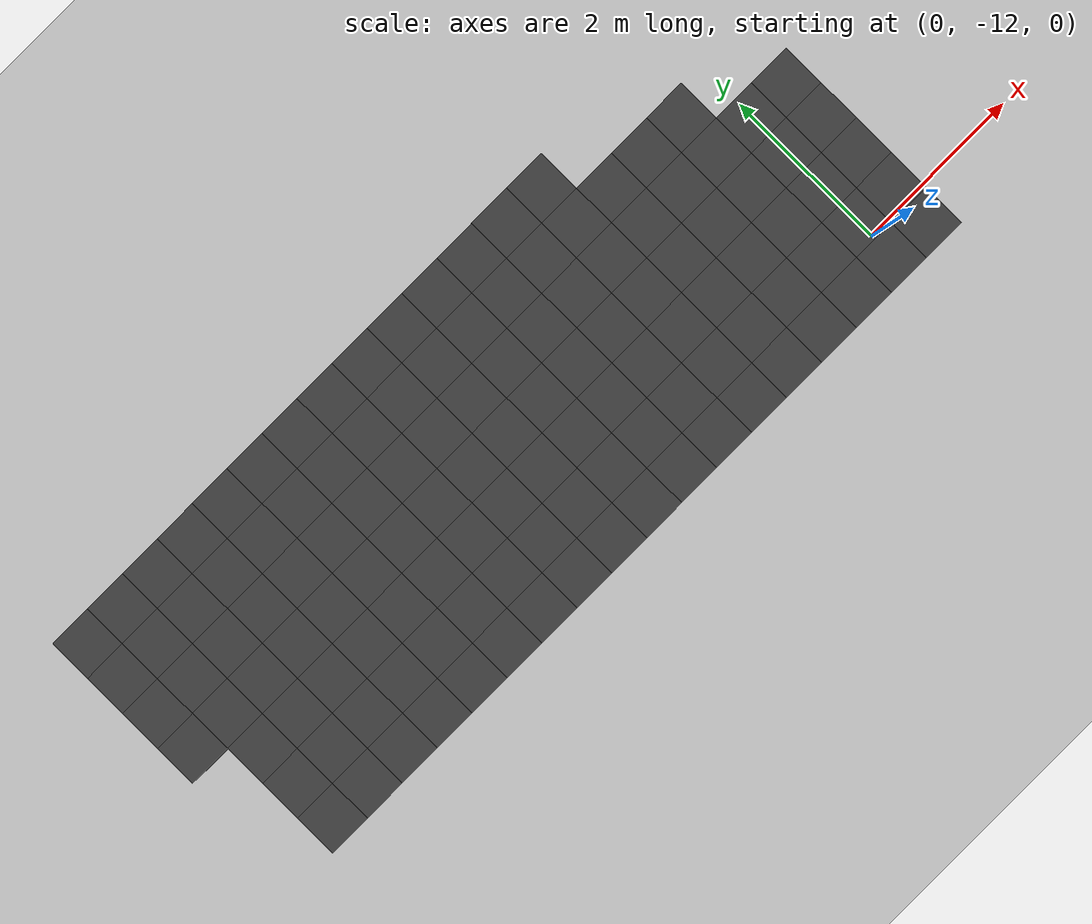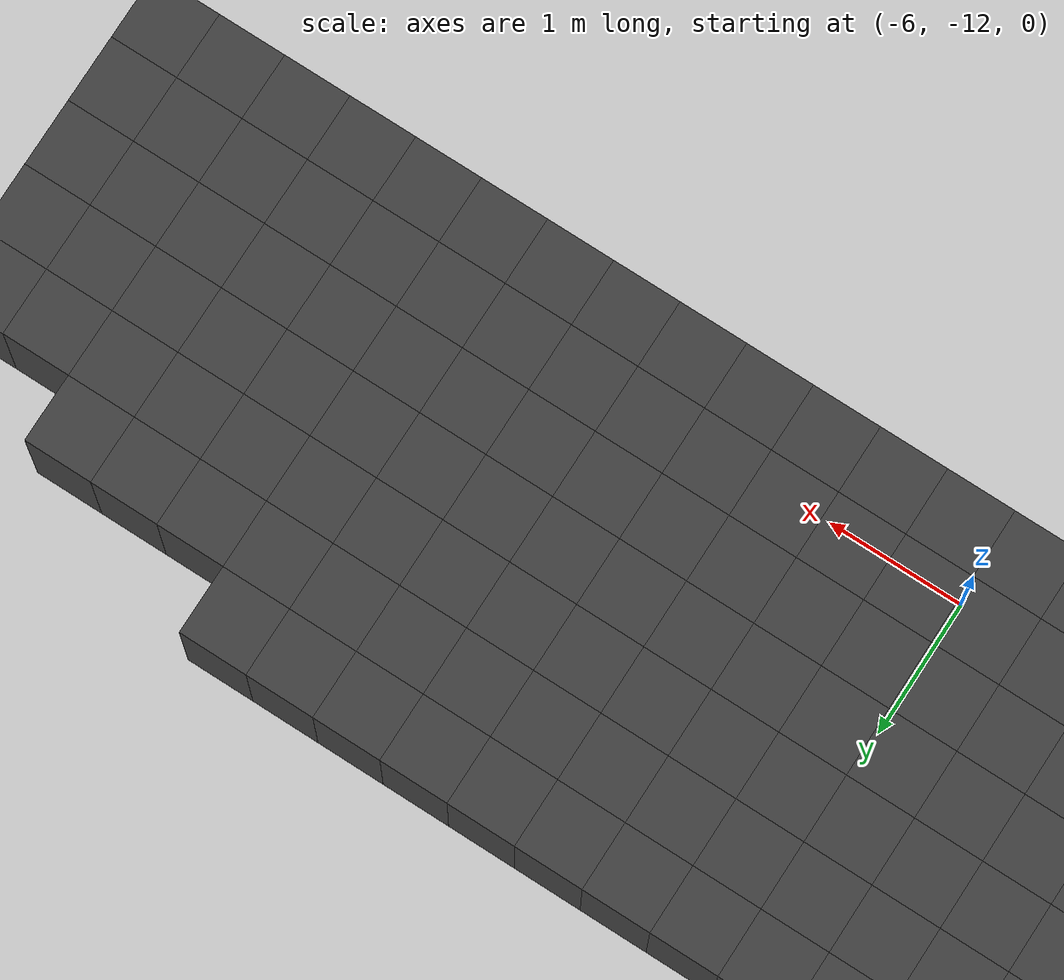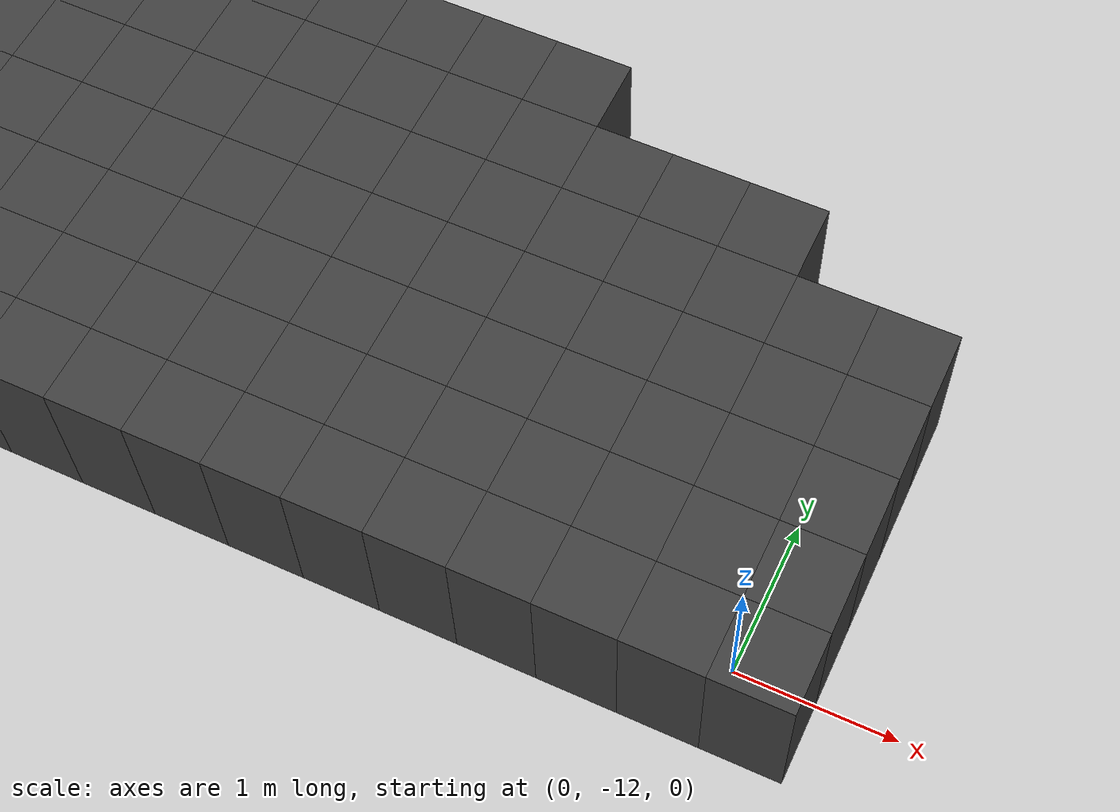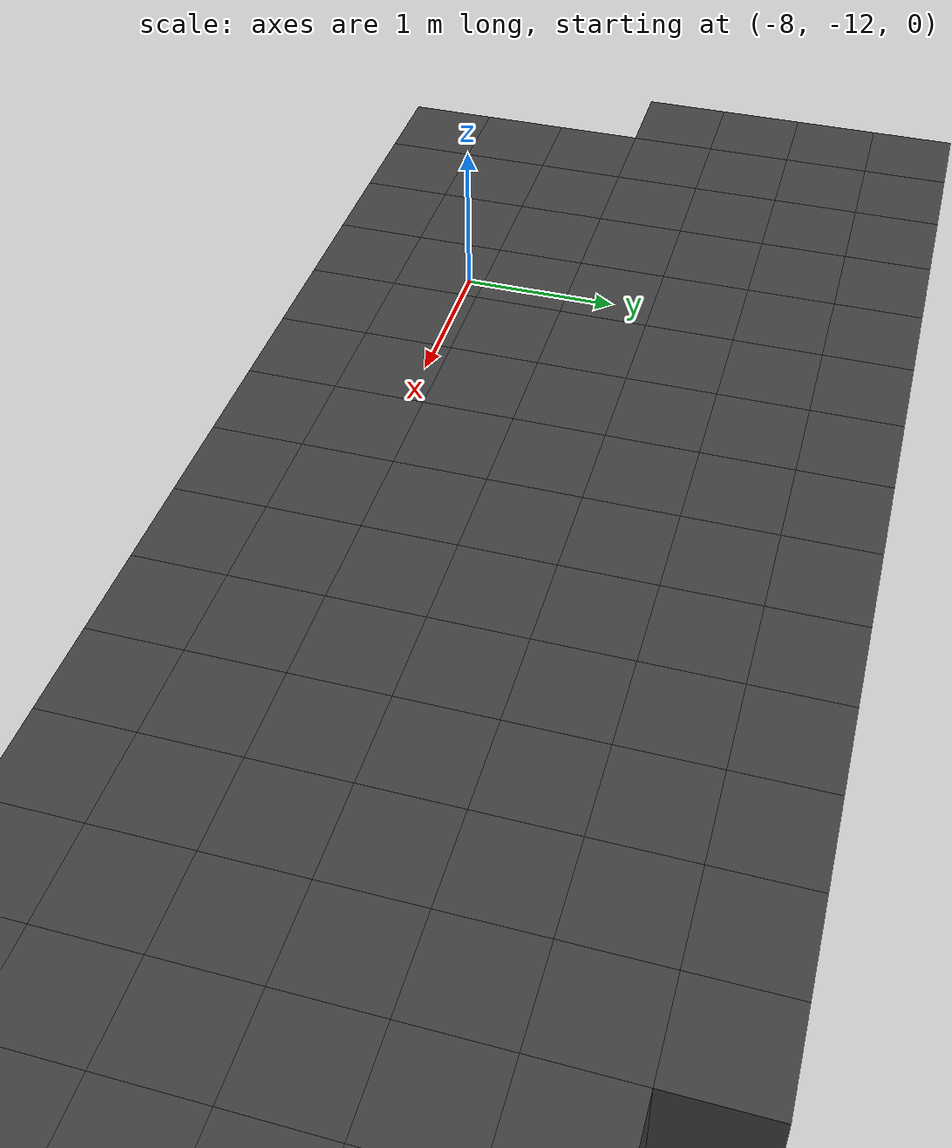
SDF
<sdf version="1.7">
 <world name="map_14802">
  <model name="ground_plane">
   <static>true</static>
   <link name="link">
    <collision name="collision">
     <geometry><plane><normal>0 0 1</normal><size>200 200</size></plane></geometry>
    </collision>
    <visual name="visual">
     <geometry><plane><normal>0 0 1</normal><size>200 200</size></plane></geometry>
     <material><ambient>0.8 0.8 0.8 1</ambient><diffuse>0.8 0.8 0.8 1</diffuse></material>
    </visual>
   </link>
  </model>
  <model name="maze_environment">
   <static>true</static>
   <link name="wall_1435">
    <pose>-8.750 -9.250 0.500 0 0 0</pose>
    <collision name="col"><geometry><box><size>0.5 0.5 1.0</size></box></geometry></collision>
    <visual name="vis">
     <geometry><box><size>0.5 0.5 1.0</size></box></geometry>
     <material><ambient>0.15 0.15 0.15 1</ambient><diffuse>0.25 0.25 0.25 1</diffuse></material>
    </visual>
   </link>
   <link name="wall_1436">
    <pose>-8.250 -9.250 0.500 0 0 0</pose>
    <collision name="col"><geometry><box><size>0.5 0.5 1.0</size></box></geometry></collision>
    <visual name="vis">
     <geometry><box><size>0.5 0.5 1.0</size></box></geometry>
     <material><ambient>0.15 0.15 0.15 1</ambient><diffuse>0.25 0.25 0.25 1</diffuse></material>
    </visual>
   </link>
   <link name="wall_1437">
    <pose>-7.750 -9.250 0.500 0 0 0</pose>
    <collision name="col"><geometry><box><size>0.5 0.5 1.0</size></box></geometry></collision>
    <visual name="vis">
     <geometry><box><size>0.5 0.5 1.0</size></box></geometry>
     <material><ambient>0.15 0.15 0.15 1</ambient><diffuse>0.25 0.25 0.25 1</diffuse></material>
    </visual>
   </link>
   <link name="wall_1438">
    <pose>-7.250 -9.250 0.500 0 0 0</pose>
    <collision name="col"><geometry><box><size>0.5 0.5 1.0</size></box></geometry></collision>
    <visual name="vis">
     <geometry><box><size>0.5 0.5 1.0</size></box></geometry>
     <material><ambient>0.15 0.15 0.15 1</ambient><diffuse>0.25 0.25 0.25 1</diffuse></material>
    </visual>
   </link>
   <link name="wall_1439">
    <pose>-6.750 -9.250 0.500 0 0 0</pose>
    <collision name="col"><geometry><box><size>0.5 0.5 1.0</size></box></geometry></collision>
    <visual name="vis">
     <geometry><box><size>0.5 0.5 1.0</size></box></geometry>
     <material><ambient>0.15 0.15 0.15 1</ambient><diffuse>0.25 0.25 0.25 1</diffuse></material>
    </visual>
   </link>
   <link name="wall_1440">
    <pose>-6.250 -9.250 0.500 0 0 0</pose>
    <collision name="col"><geometry><box><size>0.5 0.5 1.0</size></box></geometry></collision>
    <visual name="vis">
     <geometry><box><size>0.5 0.5 1.0</size></box></geometry>
     <material><ambient>0.15 0.15 0.15 1</ambient><diffuse>0.25 0.25 0.25 1</diffuse></material>
    </visual>
   </link>
   <link name="wall_1441">
    <pose>-5.750 -9.250 0.500 0 0 0</pose>
    <collision name="col"><geometry><box><size>0.5 0.5 1.0</size></box></geometry></collision>
    <visual name="vis">
     <geometry><box><size>0.5 0.5 1.0</size></box></geometry>
     <material><ambient>0.15 0.15 0.15 1</ambient><diffuse>0.25 0.25 0.25 1</diffuse></material>
    </visual>
   </link>
   <link name="wall_1442">
    <pose>-5.250 -9.250 0.500 0 0 0</pose>
    <collision name="col"><geometry><box><size>0.5 0.5 1.0</size></box></geometry></collision>
    <visual name="vis">
     <geometry><box><size>0.5 0.5 1.0</size></box></geometry>
     <material><ambient>0.15 0.15 0.15 1</ambient><diffuse>0.25 0.25 0.25 1</diffuse></material>
    </visual>
   </link>
   <link name="wall_1443">
    <pose>-4.750 -9.250 0.500 0 0 0</pose>
    <collision name="col"><geometry><box><size>0.5 0.5 1.0</size></box></geometry></collision>
    <visual name="vis">
     <geometry><box><size>0.5 0.5 1.0</size></box></geometry>
     <material><ambient>0.15 0.15 0.15 1</ambient><diffuse>0.25 0.25 0.25 1</diffuse></material>
    </visual>
   </link>
   <link name="wall_1444">
    <pose>-4.250 -9.250 0.500 0 0 0</pose>
    <collision name="col"><geometry><box><size>0.5 0.5 1.0</size></box></geometry></collision>
    <visual name="vis">
     <geometry><box><size>0.5 0.5 1.0</size></box></geometry>
     <material><ambient>0.15 0.15 0.15 1</ambient><diffuse>0.25 0.25 0.25 1</diffuse></material>
    </visual>
   </link>
   <link name="wall_1445">
    <pose>-3.750 -9.250 0.500 0 0 0</pose>
    <collision name="col"><geometry><box><size>0.5 0.5 1.0</size></box></geometry></collision>
    <visual name="vis">
     <geometry><box><size>0.5 0.5 1.0</size></box></geometry>
     <material><ambient>0.15 0.15 0.15 1</ambient><diffuse>0.25 0.25 0.25 1</diffuse></material>
    </visual>
   </link>
   <link name="wall_1446">
    <pose>-3.250 -9.250 0.500 0 0 0</pose>
    <collision name="col"><geometry><box><size>0.5 0.5 1.0</size></box></geometry></collision>
    <visual name="vis">
     <geometry><box><size>0.5 0.5 1.0</size></box></geometry>
     <material><ambient>0.15 0.15 0.15 1</ambient><diffuse>0.25 0.25 0.25 1</diffuse></material>
    </visual>
   </link>
   <link name="wall_1447">
    <pose>-2.750 -9.250 0.500 0 0 0</pose>
    <collision name="col"><geometry><box><size>0.5 0.5 1.0</size></box></geometry></collision>
    <visual name="vis">
     <geometry><box><size>0.5 0.5 1.0</size></box></geometry>
     <material><ambient>0.15 0.15 0.15 1</ambient><diffuse>0.25 0.25 0.25 1</diffuse></material>
    </visual>
   </link>
   <link name="wall_1448">
    <pose>-2.250 -9.250 0.500 0 0 0</pose>
    <collision name="col"><geometry><box><size>0.5 0.5 1.0</size></box></geometry></collision>
    <visual name="vis">
     <geometry><box><size>0.5 0.5 1.0</size></box></geometry>
     <material><ambient>0.15 0.15 0.15 1</ambient><diffuse>0.25 0.25 0.25 1</diffuse></material>
    </visual>
   </link>
   <link name="wall_1477">
    <pose>-8.750 -9.750 0.500 0 0 0</pose>
    <collision name="col"><geometry><box><size>0.5 0.5 1.0</size></box></geometry></collision>
    <visual name="vis">
     <geometry><box><size>0.5 0.5 1.0</size></box></geometry>
     <material><ambient>0.15 0.15 0.15 1</ambient><diffuse>0.25 0.25 0.25 1</diffuse></material>
    </visual>
   </link>
   <link name="wall_1478">
    <pose>-8.250 -9.750 0.500 0 0 0</pose>
    <collision name="col"><geometry><box><size>0.5 0.5 1.0</size></box></geometry></collision>
    <visual name="vis">
     <geometry><box><size>0.5 0.5 1.0</size></box></geometry>
     <material><ambient>0.15 0.15 0.15 1</ambient><diffuse>0.25 0.25 0.25 1</diffuse></material>
    </visual>
   </link>
   <link name="wall_1479">
    <pose>-7.750 -9.750 0.500 0 0 0</pose>
    <collision name="col"><geometry><box><size>0.5 0.5 1.0</size></box></geometry></collision>
    <visual name="vis">
     <geometry><box><size>0.5 0.5 1.0</size></box></geometry>
     <material><ambient>0.15 0.15 0.15 1</ambient><diffuse>0.25 0.25 0.25 1</diffuse></material>
    </visual>
   </link>
   <link name="wall_1480">
    <pose>-7.250 -9.750 0.500 0 0 0</pose>
    <collision name="col"><geometry><box><size>0.5 0.5 1.0</size></box></geometry></collision>
    <visual name="vis">
     <geometry><box><size>0.5 0.5 1.0</size></box></geometry>
     <material><ambient>0.15 0.15 0.15 1</ambient><diffuse>0.25 0.25 0.25 1</diffuse></material>
    </visual>
   </link>
   <link name="wall_1481">
    <pose>-6.750 -9.750 0.500 0 0 0</pose>
    <collision name="col"><geometry><box><size>0.5 0.5 1.0</size></box></geometry></collision>
    <visual name="vis">
     <geometry><box><size>0.5 0.5 1.0</size></box></geometry>
     <material><ambient>0.15 0.15 0.15 1</ambient><diffuse>0.25 0.25 0.25 1</diffuse></material>
    </visual>
   </link>
   <link name="wall_1482">
    <pose>-6.250 -9.750 0.500 0 0 0</pose>
    <collision name="col"><geometry><box><size>0.5 0.5 1.0</size></box></geometry></collision>
    <visual name="vis">
     <geometry><box><size>0.5 0.5 1.0</size></box></geometry>
     <material><ambient>0.15 0.15 0.15 1</ambient><diffuse>0.25 0.25 0.25 1</diffuse></material>
    </visual>
   </link>
   <link name="wall_1483">
    <pose>-5.750 -9.750 0.500 0 0 0</pose>
    <collision name="col"><geometry><box><size>0.5 0.5 1.0</size></box></geometry></collision>
    <visual name="vis">
     <geometry><box><size>0.5 0.5 1.0</size></box></geometry>
     <material><ambient>0.15 0.15 0.15 1</ambient><diffuse>0.25 0.25 0.25 1</diffuse></material>
    </visual>
   </link>
   <link name="wall_1484">
    <pose>-5.250 -9.750 0.500 0 0 0</pose>
    <collision name="col"><geometry><box><size>0.5 0.5 1.0</size></box></geometry></collision>
    <visual name="vis">
     <geometry><box><size>0.5 0.5 1.0</size></box></geometry>
     <material><ambient>0.15 0.15 0.15 1</ambient><diffuse>0.25 0.25 0.25 1</diffuse></material>
    </visual>
   </link>
   <link name="wall_1485">
    <pose>-4.750 -9.750 0.500 0 0 0</pose>
    <collision name="col"><geometry><box><size>0.5 0.5 1.0</size></box></geometry></collision>
    <visual name="vis">
     <geometry><box><size>0.5 0.5 1.0</size></box></geometry>
     <material><ambient>0.15 0.15 0.15 1</ambient><diffuse>0.25 0.25 0.25 1</diffuse></material>
    </visual>
   </link>
   <link name="wall_1486">
    <pose>-4.250 -9.750 0.500 0 0 0</pose>
    <collision name="col"><geometry><box><size>0.5 0.5 1.0</size></box></geometry></collision>
    <visual name="vis">
     <geometry><box><size>0.5 0.5 1.0</size></box></geometry>
     <material><ambient>0.15 0.15 0.15 1</ambient><diffuse>0.25 0.25 0.25 1</diffuse></material>
    </visual>
   </link>
   <link name="wall_1487">
    <pose>-3.750 -9.750 0.500 0 0 0</pose>
    <collision name="col"><geometry><box><size>0.5 0.5 1.0</size></box></geometry></collision>
    <visual name="vis">
     <geometry><box><size>0.5 0.5 1.0</size></box></geometry>
     <material><ambient>0.15 0.15 0.15 1</ambient><diffuse>0.25 0.25 0.25 1</diffuse></material>
    </visual>
   </link>
   <link name="wall_1488">
    <pose>-3.250 -9.750 0.500 0 0 0</pose>
    <collision name="col"><geometry><box><size>0.5 0.5 1.0</size></box></geometry></collision>
    <visual name="vis">
     <geometry><box><size>0.5 0.5 1.0</size></box></geometry>
     <material><ambient>0.15 0.15 0.15 1</ambient><diffuse>0.25 0.25 0.25 1</diffuse></material>
    </visual>
   </link>
   <link name="wall_1489">
    <pose>-2.750 -9.750 0.500 0 0 0</pose>
    <collision name="col"><geometry><box><size>0.5 0.5 1.0</size></box></geometry></collision>
    <visual name="vis">
     <geometry><box><size>0.5 0.5 1.0</size></box></geometry>
     <material><ambient>0.15 0.15 0.15 1</ambient><diffuse>0.25 0.25 0.25 1</diffuse></material>
    </visual>
   </link>
   <link name="wall_1490">
    <pose>-2.250 -9.750 0.500 0 0 0</pose>
    <collision name="col"><geometry><box><size>0.5 0.5 1.0</size></box></geometry></collision>
    <visual name="vis">
     <geometry><box><size>0.5 0.5 1.0</size></box></geometry>
     <material><ambient>0.15 0.15 0.15 1</ambient><diffuse>0.25 0.25 0.25 1</diffuse></material>
    </visual>
   </link>
   <link name="wall_1491">
    <pose>-1.750 -9.750 0.500 0 0 0</pose>
    <collision name="col"><geometry><box><size>0.5 0.5 1.0</size></box></geometry></collision>
    <visual name="vis">
     <geometry><box><size>0.5 0.5 1.0</size></box></geometry>
     <material><ambient>0.15 0.15 0.15 1</ambient><diffuse>0.25 0.25 0.25 1</diffuse></material>
    </visual>
   </link>
   <link name="wall_1492">
    <pose>-1.250 -9.750 0.500 0 0 0</pose>
    <collision name="col"><geometry><box><size>0.5 0.5 1.0</size></box></geometry></collision>
    <visual name="vis">
     <geometry><box><size>0.5 0.5 1.0</size></box></geometry>
     <material><ambient>0.15 0.15 0.15 1</ambient><diffuse>0.25 0.25 0.25 1</diffuse></material>
    </visual>
   </link>
   <link name="wall_1493">
    <pose>-0.750 -9.750 0.500 0 0 0</pose>
    <collision name="col"><geometry><box><size>0.5 0.5 1.0</size></box></geometry></collision>
    <visual name="vis">
     <geometry><box><size>0.5 0.5 1.0</size></box></geometry>
     <material><ambient>0.15 0.15 0.15 1</ambient><diffuse>0.25 0.25 0.25 1</diffuse></material>
    </visual>
   </link>
   <link name="wall_1517">
    <pose>-8.750 -10.250 0.500 0 0 0</pose>
    <collision name="col"><geometry><box><size>0.5 0.5 1.0</size></box></geometry></collision>
    <visual name="vis">
     <geometry><box><size>0.5 0.5 1.0</size></box></geometry>
     <material><ambient>0.15 0.15 0.15 1</ambient><diffuse>0.25 0.25 0.25 1</diffuse></material>
    </visual>
   </link>
   <link name="wall_1518">
    <pose>-8.250 -10.250 0.500 0 0 0</pose>
    <collision name="col"><geometry><box><size>0.5 0.5 1.0</size></box></geometry></collision>
    <visual name="vis">
     <geometry><box><size>0.5 0.5 1.0</size></box></geometry>
     <material><ambient>0.15 0.15 0.15 1</ambient><diffuse>0.25 0.25 0.25 1</diffuse></material>
    </visual>
   </link>
   <link name="wall_1519">
    <pose>-7.750 -10.250 0.500 0 0 0</pose>
    <collision name="col"><geometry><box><size>0.5 0.5 1.0</size></box></geometry></collision>
    <visual name="vis">
     <geometry><box><size>0.5 0.5 1.0</size></box></geometry>
     <material><ambient>0.15 0.15 0.15 1</ambient><diffuse>0.25 0.25 0.25 1</diffuse></material>
    </visual>
   </link>
   <link name="wall_1520">
    <pose>-7.250 -10.250 0.500 0 0 0</pose>
    <collision name="col"><geometry><box><size>0.5 0.5 1.0</size></box></geometry></collision>
    <visual name="vis">
     <geometry><box><size>0.5 0.5 1.0</size></box></geometry>
     <material><ambient>0.15 0.15 0.15 1</ambient><diffuse>0.25 0.25 0.25 1</diffuse></material>
    </visual>
   </link>
   <link name="wall_1521">
    <pose>-6.750 -10.250 0.500 0 0 0</pose>
    <collision name="col"><geometry><box><size>0.5 0.5 1.0</size></box></geometry></collision>
    <visual name="vis">
     <geometry><box><size>0.5 0.5 1.0</size></box></geometry>
     <material><ambient>0.15 0.15 0.15 1</ambient><diffuse>0.25 0.25 0.25 1</diffuse></material>
    </visual>
   </link>
   <link name="wall_1522">
    <pose>-6.250 -10.250 0.500 0 0 0</pose>
    <collision name="col"><geometry><box><size>0.5 0.5 1.0</size></box></geometry></collision>
    <visual name="vis">
     <geometry><box><size>0.5 0.5 1.0</size></box></geometry>
     <material><ambient>0.15 0.15 0.15 1</ambient><diffuse>0.25 0.25 0.25 1</diffuse></material>
    </visual>
   </link>
   <link name="wall_1523">
    <pose>-5.750 -10.250 0.500 0 0 0</pose>
    <collision name="col"><geometry><box><size>0.5 0.5 1.0</size></box></geometry></collision>
    <visual name="vis">
     <geometry><box><size>0.5 0.5 1.0</size></box></geometry>
     <material><ambient>0.15 0.15 0.15 1</ambient><diffuse>0.25 0.25 0.25 1</diffuse></material>
    </visual>
   </link>
   <link name="wall_1524">
    <pose>-5.250 -10.250 0.500 0 0 0</pose>
    <collision name="col"><geometry><box><size>0.5 0.5 1.0</size></box></geometry></collision>
    <visual name="vis">
     <geometry><box><size>0.5 0.5 1.0</size></box></geometry>
     <material><ambient>0.15 0.15 0.15 1</ambient><diffuse>0.25 0.25 0.25 1</diffuse></material>
    </visual>
   </link>
   <link name="wall_1525">
    <pose>-4.750 -10.250 0.500 0 0 0</pose>
    <collision name="col"><geometry><box><size>0.5 0.5 1.0</size></box></geometry></collision>
    <visual name="vis">
     <geometry><box><size>0.5 0.5 1.0</size></box></geometry>
     <material><ambient>0.15 0.15 0.15 1</ambient><diffuse>0.25 0.25 0.25 1</diffuse></material>
    </visual>
   </link>
   <link name="wall_1526">
    <pose>-4.250 -10.250 0.500 0 0 0</pose>
    <collision name="col"><geometry><box><size>0.5 0.5 1.0</size></box></geometry></collision>
    <visual name="vis">
     <geometry><box><size>0.5 0.5 1.0</size></box></geometry>
     <material><ambient>0.15 0.15 0.15 1</ambient><diffuse>0.25 0.25 0.25 1</diffuse></material>
    </visual>
   </link>
   <link name="wall_1527">
    <pose>-3.750 -10.250 0.500 0 0 0</pose>
    <collision name="col"><geometry><box><size>0.5 0.5 1.0</size></box></geometry></collision>
    <visual name="vis">
     <geometry><box><size>0.5 0.5 1.0</size></box></geometry>
     <material><ambient>0.15 0.15 0.15 1</ambient><diffuse>0.25 0.25 0.25 1</diffuse></material>
    </visual>
   </link>
   <link name="wall_1528">
    <pose>-3.250 -10.250 0.500 0 0 0</pose>
    <collision name="col"><geometry><box><size>0.5 0.5 1.0</size></box></geometry></collision>
    <visual name="vis">
     <geometry><box><size>0.5 0.5 1.0</size></box></geometry>
     <material><ambient>0.15 0.15 0.15 1</ambient><diffuse>0.25 0.25 0.25 1</diffuse></material>
    </visual>
   </link>
   <link name="wall_1529">
    <pose>-2.750 -10.250 0.500 0 0 0</pose>
    <collision name="col"><geometry><box><size>0.5 0.5 1.0</size></box></geometry></collision>
    <visual name="vis">
     <geometry><box><size>0.5 0.5 1.0</size></box></geometry>
     <material><ambient>0.15 0.15 0.15 1</ambient><diffuse>0.25 0.25 0.25 1</diffuse></material>
    </visual>
   </link>
   <link name="wall_1530">
    <pose>-2.250 -10.250 0.500 0 0 0</pose>
    <collision name="col"><geometry><box><size>0.5 0.5 1.0</size></box></geometry></collision>
    <visual name="vis">
     <geometry><box><size>0.5 0.5 1.0</size></box></geometry>
     <material><ambient>0.15 0.15 0.15 1</ambient><diffuse>0.25 0.25 0.25 1</diffuse></material>
    </visual>
   </link>
   <link name="wall_1531">
    <pose>-1.750 -10.250 0.500 0 0 0</pose>
    <collision name="col"><geometry><box><size>0.5 0.5 1.0</size></box></geometry></collision>
    <visual name="vis">
     <geometry><box><size>0.5 0.5 1.0</size></box></geometry>
     <material><ambient>0.15 0.15 0.15 1</ambient><diffuse>0.25 0.25 0.25 1</diffuse></material>
    </visual>
   </link>
   <link name="wall_1532">
    <pose>-1.250 -10.250 0.500 0 0 0</pose>
    <collision name="col"><geometry><box><size>0.5 0.5 1.0</size></box></geometry></collision>
    <visual name="vis">
     <geometry><box><size>0.5 0.5 1.0</size></box></geometry>
     <material><ambient>0.15 0.15 0.15 1</ambient><diffuse>0.25 0.25 0.25 1</diffuse></material>
    </visual>
   </link>
   <link name="wall_1533">
    <pose>-0.750 -10.250 0.500 0 0 0</pose>
    <collision name="col"><geometry><box><size>0.5 0.5 1.0</size></box></geometry></collision>
    <visual name="vis">
     <geometry><box><size>0.5 0.5 1.0</size></box></geometry>
     <material><ambient>0.15 0.15 0.15 1</ambient><diffuse>0.25 0.25 0.25 1</diffuse></material>
    </visual>
   </link>
   <link name="wall_1534">
    <pose>-0.250 -10.250 0.500 0 0 0</pose>
    <collision name="col"><geometry><box><size>0.5 0.5 1.0</size></box></geometry></collision>
    <visual name="vis">
     <geometry><box><size>0.5 0.5 1.0</size></box></geometry>
     <material><ambient>0.15 0.15 0.15 1</ambient><diffuse>0.25 0.25 0.25 1</diffuse></material>
    </visual>
   </link>
   <link name="wall_1535">
    <pose>0.250 -10.250 0.500 0 0 0</pose>
    <collision name="col"><geometry><box><size>0.5 0.5 1.0</size></box></geometry></collision>
    <visual name="vis">
     <geometry><box><size>0.5 0.5 1.0</size></box></geometry>
     <material><ambient>0.15 0.15 0.15 1</ambient><diffuse>0.25 0.25 0.25 1</diffuse></material>
    </visual>
   </link>
   <link name="wall_1560">
    <pose>-8.750 -10.750 0.500 0 0 0</pose>
    <collision name="col"><geometry><box><size>0.5 0.5 1.0</size></box></geometry></collision>
    <visual name="vis">
     <geometry><box><size>0.5 0.5 1.0</size></box></geometry>
     <material><ambient>0.15 0.15 0.15 1</ambient><diffuse>0.25 0.25 0.25 1</diffuse></material>
    </visual>
   </link>
   <link name="wall_1561">
    <pose>-8.250 -10.750 0.500 0 0 0</pose>
    <collision name="col"><geometry><box><size>0.5 0.5 1.0</size></box></geometry></collision>
    <visual name="vis">
     <geometry><box><size>0.5 0.5 1.0</size></box></geometry>
     <material><ambient>0.15 0.15 0.15 1</ambient><diffuse>0.25 0.25 0.25 1</diffuse></material>
    </visual>
   </link>
   <link name="wall_1562">
    <pose>-7.750 -10.750 0.500 0 0 0</pose>
    <collision name="col"><geometry><box><size>0.5 0.5 1.0</size></box></geometry></collision>
    <visual name="vis">
     <geometry><box><size>0.5 0.5 1.0</size></box></geometry>
     <material><ambient>0.15 0.15 0.15 1</ambient><diffuse>0.25 0.25 0.25 1</diffuse></material>
    </visual>
   </link>
   <link name="wall_1563">
    <pose>-7.250 -10.750 0.500 0 0 0</pose>
    <collision name="col"><geometry><box><size>0.5 0.5 1.0</size></box></geometry></collision>
    <visual name="vis">
     <geometry><box><size>0.5 0.5 1.0</size></box></geometry>
     <material><ambient>0.15 0.15 0.15 1</ambient><diffuse>0.25 0.25 0.25 1</diffuse></material>
    </visual>
   </link>
   <link name="wall_1564">
    <pose>-6.750 -10.750 0.500 0 0 0</pose>
    <collision name="col"><geometry><box><size>0.5 0.5 1.0</size></box></geometry></collision>
    <visual name="vis">
     <geometry><box><size>0.5 0.5 1.0</size></box></geometry>
     <material><ambient>0.15 0.15 0.15 1</ambient><diffuse>0.25 0.25 0.25 1</diffuse></material>
    </visual>
   </link>
   <link name="wall_1565">
    <pose>-6.250 -10.750 0.500 0 0 0</pose>
    <collision name="col"><geometry><box><size>0.5 0.5 1.0</size></box></geometry></collision>
    <visual name="vis">
     <geometry><box><size>0.5 0.5 1.0</size></box></geometry>
     <material><ambient>0.15 0.15 0.15 1</ambient><diffuse>0.25 0.25 0.25 1</diffuse></material>
    </visual>
   </link>
   <link name="wall_1566">
    <pose>-5.750 -10.750 0.500 0 0 0</pose>
    <collision name="col"><geometry><box><size>0.5 0.5 1.0</size></box></geometry></collision>
    <visual name="vis">
     <geometry><box><size>0.5 0.5 1.0</size></box></geometry>
     <material><ambient>0.15 0.15 0.15 1</ambient><diffuse>0.25 0.25 0.25 1</diffuse></material>
    </visual>
   </link>
   <link name="wall_1567">
    <pose>-5.250 -10.750 0.500 0 0 0</pose>
    <collision name="col"><geometry><box><size>0.5 0.5 1.0</size></box></geometry></collision>
    <visual name="vis">
     <geometry><box><size>0.5 0.5 1.0</size></box></geometry>
     <material><ambient>0.15 0.15 0.15 1</ambient><diffuse>0.25 0.25 0.25 1</diffuse></material>
    </visual>
   </link>
   <link name="wall_1568">
    <pose>-4.750 -10.750 0.500 0 0 0</pose>
    <collision name="col"><geometry><box><size>0.5 0.5 1.0</size></box></geometry></collision>
    <visual name="vis">
     <geometry><box><size>0.5 0.5 1.0</size></box></geometry>
     <material><ambient>0.15 0.15 0.15 1</ambient><diffuse>0.25 0.25 0.25 1</diffuse></material>
    </visual>
   </link>
   <link name="wall_1569">
    <pose>-4.250 -10.750 0.500 0 0 0</pose>
    <collision name="col"><geometry><box><size>0.5 0.5 1.0</size></box></geometry></collision>
    <visual name="vis">
     <geometry><box><size>0.5 0.5 1.0</size></box></geometry>
     <material><ambient>0.15 0.15 0.15 1</ambient><diffuse>0.25 0.25 0.25 1</diffuse></material>
    </visual>
   </link>
   <link name="wall_1570">
    <pose>-3.750 -10.750 0.500 0 0 0</pose>
    <collision name="col"><geometry><box><size>0.5 0.5 1.0</size></box></geometry></collision>
    <visual name="vis">
     <geometry><box><size>0.5 0.5 1.0</size></box></geometry>
     <material><ambient>0.15 0.15 0.15 1</ambient><diffuse>0.25 0.25 0.25 1</diffuse></material>
    </visual>
   </link>
   <link name="wall_1571">
    <pose>-3.250 -10.750 0.500 0 0 0</pose>
    <collision name="col"><geometry><box><size>0.5 0.5 1.0</size></box></geometry></collision>
    <visual name="vis">
     <geometry><box><size>0.5 0.5 1.0</size></box></geometry>
     <material><ambient>0.15 0.15 0.15 1</ambient><diffuse>0.25 0.25 0.25 1</diffuse></material>
    </visual>
   </link>
   <link name="wall_1572">
    <pose>-2.750 -10.750 0.500 0 0 0</pose>
    <collision name="col"><geometry><box><size>0.5 0.5 1.0</size></box></geometry></collision>
    <visual name="vis">
     <geometry><box><size>0.5 0.5 1.0</size></box></geometry>
     <material><ambient>0.15 0.15 0.15 1</ambient><diffuse>0.25 0.25 0.25 1</diffuse></material>
    </visual>
   </link>
   <link name="wall_1573">
    <pose>-2.250 -10.750 0.500 0 0 0</pose>
    <collision name="col"><geometry><box><size>0.5 0.5 1.0</size></box></geometry></collision>
    <visual name="vis">
     <geometry><box><size>0.5 0.5 1.0</size></box></geometry>
     <material><ambient>0.15 0.15 0.15 1</ambient><diffuse>0.25 0.25 0.25 1</diffuse></material>
    </visual>
   </link>
   <link name="wall_1574">
    <pose>-1.750 -10.750 0.500 0 0 0</pose>
    <collision name="col"><geometry><box><size>0.5 0.5 1.0</size></box></geometry></collision>
    <visual name="vis">
     <geometry><box><size>0.5 0.5 1.0</size></box></geometry>
     <material><ambient>0.15 0.15 0.15 1</ambient><diffuse>0.25 0.25 0.25 1</diffuse></material>
    </visual>
   </link>
   <link name="wall_1575">
    <pose>-1.250 -10.750 0.500 0 0 0</pose>
    <collision name="col"><geometry><box><size>0.5 0.5 1.0</size></box></geometry></collision>
    <visual name="vis">
     <geometry><box><size>0.5 0.5 1.0</size></box></geometry>
     <material><ambient>0.15 0.15 0.15 1</ambient><diffuse>0.25 0.25 0.25 1</diffuse></material>
    </visual>
   </link>
   <link name="wall_1576">
    <pose>-0.750 -10.750 0.500 0 0 0</pose>
    <collision name="col"><geometry><box><size>0.5 0.5 1.0</size></box></geometry></collision>
    <visual name="vis">
     <geometry><box><size>0.5 0.5 1.0</size></box></geometry>
     <material><ambient>0.15 0.15 0.15 1</ambient><diffuse>0.25 0.25 0.25 1</diffuse></material>
    </visual>
   </link>
   <link name="wall_1577">
    <pose>-0.250 -10.750 0.500 0 0 0</pose>
    <collision name="col"><geometry><box><size>0.5 0.5 1.0</size></box></geometry></collision>
    <visual name="vis">
     <geometry><box><size>0.5 0.5 1.0</size></box></geometry>
     <material><ambient>0.15 0.15 0.15 1</ambient><diffuse>0.25 0.25 0.25 1</diffuse></material>
    </visual>
   </link>
   <link name="wall_1578">
    <pose>0.250 -10.750 0.500 0 0 0</pose>
    <collision name="col"><geometry><box><size>0.5 0.5 1.0</size></box></geometry></collision>
    <visual name="vis">
     <geometry><box><size>0.5 0.5 1.0</size></box></geometry>
     <material><ambient>0.15 0.15 0.15 1</ambient><diffuse>0.25 0.25 0.25 1</diffuse></material>
    </visual>
   </link>
   <link name="wall_1607">
    <pose>-8.250 -11.250 0.500 0 0 0</pose>
    <collision name="col"><geometry><box><size>0.5 0.5 1.0</size></box></geometry></collision>
    <visual name="vis">
     <geometry><box><size>0.5 0.5 1.0</size></box></geometry>
     <material><ambient>0.15 0.15 0.15 1</ambient><diffuse>0.25 0.25 0.25 1</diffuse></material>
    </visual>
   </link>
   <link name="wall_1608">
    <pose>-7.750 -11.250 0.500 0 0 0</pose>
    <collision name="col"><geometry><box><size>0.5 0.5 1.0</size></box></geometry></collision>
    <visual name="vis">
     <geometry><box><size>0.5 0.5 1.0</size></box></geometry>
     <material><ambient>0.15 0.15 0.15 1</ambient><diffuse>0.25 0.25 0.25 1</diffuse></material>
    </visual>
   </link>
   <link name="wall_1609">
    <pose>-7.250 -11.250 0.500 0 0 0</pose>
    <collision name="col"><geometry><box><size>0.5 0.5 1.0</size></box></geometry></collision>
    <visual name="vis">
     <geometry><box><size>0.5 0.5 1.0</size></box></geometry>
     <material><ambient>0.15 0.15 0.15 1</ambient><diffuse>0.25 0.25 0.25 1</diffuse></material>
    </visual>
   </link>
   <link name="wall_1610">
    <pose>-6.750 -11.250 0.500 0 0 0</pose>
    <collision name="col"><geometry><box><size>0.5 0.5 1.0</size></box></geometry></collision>
    <visual name="vis">
     <geometry><box><size>0.5 0.5 1.0</size></box></geometry>
     <material><ambient>0.15 0.15 0.15 1</ambient><diffuse>0.25 0.25 0.25 1</diffuse></material>
    </visual>
   </link>
   <link name="wall_1611">
    <pose>-6.250 -11.250 0.500 0 0 0</pose>
    <collision name="col"><geometry><box><size>0.5 0.5 1.0</size></box></geometry></collision>
    <visual name="vis">
     <geometry><box><size>0.5 0.5 1.0</size></box></geometry>
     <material><ambient>0.15 0.15 0.15 1</ambient><diffuse>0.25 0.25 0.25 1</diffuse></material>
    </visual>
   </link>
   <link name="wall_1612">
    <pose>-5.750 -11.250 0.500 0 0 0</pose>
    <collision name="col"><geometry><box><size>0.5 0.5 1.0</size></box></geometry></collision>
    <visual name="vis">
     <geometry><box><size>0.5 0.5 1.0</size></box></geometry>
     <material><ambient>0.15 0.15 0.15 1</ambient><diffuse>0.25 0.25 0.25 1</diffuse></material>
    </visual>
   </link>
   <link name="wall_1613">
    <pose>-5.250 -11.250 0.500 0 0 0</pose>
    <collision name="col"><geometry><box><size>0.5 0.5 1.0</size></box></geometry></collision>
    <visual name="vis">
     <geometry><box><size>0.5 0.5 1.0</size></box></geometry>
     <material><ambient>0.15 0.15 0.15 1</ambient><diffuse>0.25 0.25 0.25 1</diffuse></material>
    </visual>
   </link>
   <link name="wall_1614">
    <pose>-4.750 -11.250 0.500 0 0 0</pose>
    <collision name="col"><geometry><box><size>0.5 0.5 1.0</size></box></geometry></collision>
    <visual name="vis">
     <geometry><box><size>0.5 0.5 1.0</size></box></geometry>
     <material><ambient>0.15 0.15 0.15 1</ambient><diffuse>0.25 0.25 0.25 1</diffuse></material>
    </visual>
   </link>
   <link name="wall_1615">
    <pose>-4.250 -11.250 0.500 0 0 0</pose>
    <collision name="col"><geometry><box><size>0.5 0.5 1.0</size></box></geometry></collision>
    <visual name="vis">
     <geometry><box><size>0.5 0.5 1.0</size></box></geometry>
     <material><ambient>0.15 0.15 0.15 1</ambient><diffuse>0.25 0.25 0.25 1</diffuse></material>
    </visual>
   </link>
   <link name="wall_1616">
    <pose>-3.750 -11.250 0.500 0 0 0</pose>
    <collision name="col"><geometry><box><size>0.5 0.5 1.0</size></box></geometry></collision>
    <visual name="vis">
     <geometry><box><size>0.5 0.5 1.0</size></box></geometry>
     <material><ambient>0.15 0.15 0.15 1</ambient><diffuse>0.25 0.25 0.25 1</diffuse></material>
    </visual>
   </link>
   <link name="wall_1617">
    <pose>-3.250 -11.250 0.500 0 0 0</pose>
    <collision name="col"><geometry><box><size>0.5 0.5 1.0</size></box></geometry></collision>
    <visual name="vis">
     <geometry><box><size>0.5 0.5 1.0</size></box></geometry>
     <material><ambient>0.15 0.15 0.15 1</ambient><diffuse>0.25 0.25 0.25 1</diffuse></material>
    </visual>
   </link>
   <link name="wall_1618">
    <pose>-2.750 -11.250 0.500 0 0 0</pose>
    <collision name="col"><geometry><box><size>0.5 0.5 1.0</size></box></geometry></collision>
    <visual name="vis">
     <geometry><box><size>0.5 0.5 1.0</size></box></geometry>
     <material><ambient>0.15 0.15 0.15 1</ambient><diffuse>0.25 0.25 0.25 1</diffuse></material>
    </visual>
   </link>
   <link name="wall_1619">
    <pose>-2.250 -11.250 0.500 0 0 0</pose>
    <collision name="col"><geometry><box><size>0.5 0.5 1.0</size></box></geometry></collision>
    <visual name="vis">
     <geometry><box><size>0.5 0.5 1.0</size></box></geometry>
     <material><ambient>0.15 0.15 0.15 1</ambient><diffuse>0.25 0.25 0.25 1</diffuse></material>
    </visual>
   </link>
   <link name="wall_1620">
    <pose>-1.750 -11.250 0.500 0 0 0</pose>
    <collision name="col"><geometry><box><size>0.5 0.5 1.0</size></box></geometry></collision>
    <visual name="vis">
     <geometry><box><size>0.5 0.5 1.0</size></box></geometry>
     <material><ambient>0.15 0.15 0.15 1</ambient><diffuse>0.25 0.25 0.25 1</diffuse></material>
    </visual>
   </link>
   <link name="wall_1621">
    <pose>-1.250 -11.250 0.500 0 0 0</pose>
    <collision name="col"><geometry><box><size>0.5 0.5 1.0</size></box></geometry></collision>
    <visual name="vis">
     <geometry><box><size>0.5 0.5 1.0</size></box></geometry>
     <material><ambient>0.15 0.15 0.15 1</ambient><diffuse>0.25 0.25 0.25 1</diffuse></material>
    </visual>
   </link>
   <link name="wall_1622">
    <pose>-0.750 -11.250 0.500 0 0 0</pose>
    <collision name="col"><geometry><box><size>0.5 0.5 1.0</size></box></geometry></collision>
    <visual name="vis">
     <geometry><box><size>0.5 0.5 1.0</size></box></geometry>
     <material><ambient>0.15 0.15 0.15 1</ambient><diffuse>0.25 0.25 0.25 1</diffuse></material>
    </visual>
   </link>
   <link name="wall_1623">
    <pose>-0.250 -11.250 0.500 0 0 0</pose>
    <collision name="col"><geometry><box><size>0.5 0.5 1.0</size></box></geometry></collision>
    <visual name="vis">
     <geometry><box><size>0.5 0.5 1.0</size></box></geometry>
     <material><ambient>0.15 0.15 0.15 1</ambient><diffuse>0.25 0.25 0.25 1</diffuse></material>
    </visual>
   </link>
   <link name="wall_1624">
    <pose>0.250 -11.250 0.500 0 0 0</pose>
    <collision name="col"><geometry><box><size>0.5 0.5 1.0</size></box></geometry></collision>
    <visual name="vis">
     <geometry><box><size>0.5 0.5 1.0</size></box></geometry>
     <material><ambient>0.15 0.15 0.15 1</ambient><diffuse>0.25 0.25 0.25 1</diffuse></material>
    </visual>
   </link>
   <link name="wall_1649">
    <pose>-8.250 -11.750 0.500 0 0 0</pose>
    <collision name="col"><geometry><box><size>0.5 0.5 1.0</size></box></geometry></collision>
    <visual name="vis">
     <geometry><box><size>0.5 0.5 1.0</size></box></geometry>
     <material><ambient>0.15 0.15 0.15 1</ambient><diffuse>0.25 0.25 0.25 1</diffuse></material>
    </visual>
   </link>
   <link name="wall_1650">
    <pose>-7.750 -11.750 0.500 0 0 0</pose>
    <collision name="col"><geometry><box><size>0.5 0.5 1.0</size></box></geometry></collision>
    <visual name="vis">
     <geometry><box><size>0.5 0.5 1.0</size></box></geometry>
     <material><ambient>0.15 0.15 0.15 1</ambient><diffuse>0.25 0.25 0.25 1</diffuse></material>
    </visual>
   </link>
   <link name="wall_1651">
    <pose>-7.250 -11.750 0.500 0 0 0</pose>
    <collision name="col"><geometry><box><size>0.5 0.5 1.0</size></box></geometry></collision>
    <visual name="vis">
     <geometry><box><size>0.5 0.5 1.0</size></box></geometry>
     <material><ambient>0.15 0.15 0.15 1</ambient><diffuse>0.25 0.25 0.25 1</diffuse></material>
    </visual>
   </link>
   <link name="wall_1652">
    <pose>-6.750 -11.750 0.500 0 0 0</pose>
    <collision name="col"><geometry><box><size>0.5 0.5 1.0</size></box></geometry></collision>
    <visual name="vis">
     <geometry><box><size>0.5 0.5 1.0</size></box></geometry>
     <material><ambient>0.15 0.15 0.15 1</ambient><diffuse>0.25 0.25 0.25 1</diffuse></material>
    </visual>
   </link>
   <link name="wall_1653">
    <pose>-6.250 -11.750 0.500 0 0 0</pose>
    <collision name="col"><geometry><box><size>0.5 0.5 1.0</size></box></geometry></collision>
    <visual name="vis">
     <geometry><box><size>0.5 0.5 1.0</size></box></geometry>
     <material><ambient>0.15 0.15 0.15 1</ambient><diffuse>0.25 0.25 0.25 1</diffuse></material>
    </visual>
   </link>
   <link name="wall_1654">
    <pose>-5.750 -11.750 0.500 0 0 0</pose>
    <collision name="col"><geometry><box><size>0.5 0.5 1.0</size></box></geometry></collision>
    <visual name="vis">
     <geometry><box><size>0.5 0.5 1.0</size></box></geometry>
     <material><ambient>0.15 0.15 0.15 1</ambient><diffuse>0.25 0.25 0.25 1</diffuse></material>
    </visual>
   </link>
   <link name="wall_1655">
    <pose>-5.250 -11.750 0.500 0 0 0</pose>
    <collision name="col"><geometry><box><size>0.5 0.5 1.0</size></box></geometry></collision>
    <visual name="vis">
     <geometry><box><size>0.5 0.5 1.0</size></box></geometry>
     <material><ambient>0.15 0.15 0.15 1</ambient><diffuse>0.25 0.25 0.25 1</diffuse></material>
    </visual>
   </link>
   <link name="wall_1656">
    <pose>-4.750 -11.750 0.500 0 0 0</pose>
    <collision name="col"><geometry><box><size>0.5 0.5 1.0</size></box></geometry></collision>
    <visual name="vis">
     <geometry><box><size>0.5 0.5 1.0</size></box></geometry>
     <material><ambient>0.15 0.15 0.15 1</ambient><diffuse>0.25 0.25 0.25 1</diffuse></material>
    </visual>
   </link>
   <link name="wall_1657">
    <pose>-4.250 -11.750 0.500 0 0 0</pose>
    <collision name="col"><geometry><box><size>0.5 0.5 1.0</size></box></geometry></collision>
    <visual name="vis">
     <geometry><box><size>0.5 0.5 1.0</size></box></geometry>
     <material><ambient>0.15 0.15 0.15 1</ambient><diffuse>0.25 0.25 0.25 1</diffuse></material>
    </visual>
   </link>
   <link name="wall_1658">
    <pose>-3.750 -11.750 0.500 0 0 0</pose>
    <collision name="col"><geometry><box><size>0.5 0.5 1.0</size></box></geometry></collision>
    <visual name="vis">
     <geometry><box><size>0.5 0.5 1.0</size></box></geometry>
     <material><ambient>0.15 0.15 0.15 1</ambient><diffuse>0.25 0.25 0.25 1</diffuse></material>
    </visual>
   </link>
   <link name="wall_1659">
    <pose>-3.250 -11.750 0.500 0 0 0</pose>
    <collision name="col"><geometry><box><size>0.5 0.5 1.0</size></box></geometry></collision>
    <visual name="vis">
     <geometry><box><size>0.5 0.5 1.0</size></box></geometry>
     <material><ambient>0.15 0.15 0.15 1</ambient><diffuse>0.25 0.25 0.25 1</diffuse></material>
    </visual>
   </link>
   <link name="wall_1660">
    <pose>-2.750 -11.750 0.500 0 0 0</pose>
    <collision name="col"><geometry><box><size>0.5 0.5 1.0</size></box></geometry></collision>
    <visual name="vis">
     <geometry><box><size>0.5 0.5 1.0</size></box></geometry>
     <material><ambient>0.15 0.15 0.15 1</ambient><diffuse>0.25 0.25 0.25 1</diffuse></material>
    </visual>
   </link>
   <link name="wall_1661">
    <pose>-2.250 -11.750 0.500 0 0 0</pose>
    <collision name="col"><geometry><box><size>0.5 0.5 1.0</size></box></geometry></collision>
    <visual name="vis">
     <geometry><box><size>0.5 0.5 1.0</size></box></geometry>
     <material><ambient>0.15 0.15 0.15 1</ambient><diffuse>0.25 0.25 0.25 1</diffuse></material>
    </visual>
   </link>
   <link name="wall_1662">
    <pose>-1.750 -11.750 0.500 0 0 0</pose>
    <collision name="col"><geometry><box><size>0.5 0.5 1.0</size></box></geometry></collision>
    <visual name="vis">
     <geometry><box><size>0.5 0.5 1.0</size></box></geometry>
     <material><ambient>0.15 0.15 0.15 1</ambient><diffuse>0.25 0.25 0.25 1</diffuse></material>
    </visual>
   </link>
   <link name="wall_1663">
    <pose>-1.250 -11.750 0.500 0 0 0</pose>
    <collision name="col"><geometry><box><size>0.5 0.5 1.0</size></box></geometry></collision>
    <visual name="vis">
     <geometry><box><size>0.5 0.5 1.0</size></box></geometry>
     <material><ambient>0.15 0.15 0.15 1</ambient><diffuse>0.25 0.25 0.25 1</diffuse></material>
    </visual>
   </link>
   <link name="wall_1664">
    <pose>-0.750 -11.750 0.500 0 0 0</pose>
    <collision name="col"><geometry><box><size>0.5 0.5 1.0</size></box></geometry></collision>
    <visual name="vis">
     <geometry><box><size>0.5 0.5 1.0</size></box></geometry>
     <material><ambient>0.15 0.15 0.15 1</ambient><diffuse>0.25 0.25 0.25 1</diffuse></material>
    </visual>
   </link>
   <link name="wall_1665">
    <pose>-0.250 -11.750 0.500 0 0 0</pose>
    <collision name="col"><geometry><box><size>0.5 0.5 1.0</size></box></geometry></collision>
    <visual name="vis">
     <geometry><box><size>0.5 0.5 1.0</size></box></geometry>
     <material><ambient>0.15 0.15 0.15 1</ambient><diffuse>0.25 0.25 0.25 1</diffuse></material>
    </visual>
   </link>
   <link name="wall_1666">
    <pose>0.250 -11.750 0.500 0 0 0</pose>
    <collision name="col"><geometry><box><size>0.5 0.5 1.0</size></box></geometry></collision>
    <visual name="vis">
     <geometry><box><size>0.5 0.5 1.0</size></box></geometry>
     <material><ambient>0.15 0.15 0.15 1</ambient><diffuse>0.25 0.25 0.25 1</diffuse></material>
    </visual>
   </link>
   <link name="wall_1696">
    <pose>-8.250 -12.250 0.500 0 0 0</pose>
    <collision name="col"><geometry><box><size>0.5 0.5 1.0</size></box></geometry></collision>
    <visual name="vis">
     <geometry><box><size>0.5 0.5 1.0</size></box></geometry>
     <material><ambient>0.15 0.15 0.15 1</ambient><diffuse>0.25 0.25 0.25 1</diffuse></material>
    </visual>
   </link>
   <link name="wall_1697">
    <pose>-7.750 -12.250 0.500 0 0 0</pose>
    <collision name="col"><geometry><box><size>0.5 0.5 1.0</size></box></geometry></collision>
    <visual name="vis">
     <geometry><box><size>0.5 0.5 1.0</size></box></geometry>
     <material><ambient>0.15 0.15 0.15 1</ambient><diffuse>0.25 0.25 0.25 1</diffuse></material>
    </visual>
   </link>
   <link name="wall_1698">
    <pose>-7.250 -12.250 0.500 0 0 0</pose>
    <collision name="col"><geometry><box><size>0.5 0.5 1.0</size></box></geometry></collision>
    <visual name="vis">
     <geometry><box><size>0.5 0.5 1.0</size></box></geometry>
     <material><ambient>0.15 0.15 0.15 1</ambient><diffuse>0.25 0.25 0.25 1</diffuse></material>
    </visual>
   </link>
   <link name="wall_1699">
    <pose>-6.750 -12.250 0.500 0 0 0</pose>
    <collision name="col"><geometry><box><size>0.5 0.5 1.0</size></box></geometry></collision>
    <visual name="vis">
     <geometry><box><size>0.5 0.5 1.0</size></box></geometry>
     <material><ambient>0.15 0.15 0.15 1</ambient><diffuse>0.25 0.25 0.25 1</diffuse></material>
    </visual>
   </link>
   <link name="wall_1700">
    <pose>-6.250 -12.250 0.500 0 0 0</pose>
    <collision name="col"><geometry><box><size>0.5 0.5 1.0</size></box></geometry></collision>
    <visual name="vis">
     <geometry><box><size>0.5 0.5 1.0</size></box></geometry>
     <material><ambient>0.15 0.15 0.15 1</ambient><diffuse>0.25 0.25 0.25 1</diffuse></material>
    </visual>
   </link>
   <link name="wall_1701">
    <pose>-5.750 -12.250 0.500 0 0 0</pose>
    <collision name="col"><geometry><box><size>0.5 0.5 1.0</size></box></geometry></collision>
    <visual name="vis">
     <geometry><box><size>0.5 0.5 1.0</size></box></geometry>
     <material><ambient>0.15 0.15 0.15 1</ambient><diffuse>0.25 0.25 0.25 1</diffuse></material>
    </visual>
   </link>
   <link name="wall_1702">
    <pose>-5.250 -12.250 0.500 0 0 0</pose>
    <collision name="col"><geometry><box><size>0.5 0.5 1.0</size></box></geometry></collision>
    <visual name="vis">
     <geometry><box><size>0.5 0.5 1.0</size></box></geometry>
     <material><ambient>0.15 0.15 0.15 1</ambient><diffuse>0.25 0.25 0.25 1</diffuse></material>
    </visual>
   </link>
   <link name="wall_1703">
    <pose>-4.750 -12.250 0.500 0 0 0</pose>
    <collision name="col"><geometry><box><size>0.5 0.5 1.0</size></box></geometry></collision>
    <visual name="vis">
     <geometry><box><size>0.5 0.5 1.0</size></box></geometry>
     <material><ambient>0.15 0.15 0.15 1</ambient><diffuse>0.25 0.25 0.25 1</diffuse></material>
    </visual>
   </link>
   <link name="wall_1704">
    <pose>-4.250 -12.250 0.500 0 0 0</pose>
    <collision name="col"><geometry><box><size>0.5 0.5 1.0</size></box></geometry></collision>
    <visual name="vis">
     <geometry><box><size>0.5 0.5 1.0</size></box></geometry>
     <material><ambient>0.15 0.15 0.15 1</ambient><diffuse>0.25 0.25 0.25 1</diffuse></material>
    </visual>
   </link>
   <link name="wall_1705">
    <pose>-3.750 -12.250 0.500 0 0 0</pose>
    <collision name="col"><geometry><box><size>0.5 0.5 1.0</size></box></geometry></collision>
    <visual name="vis">
     <geometry><box><size>0.5 0.5 1.0</size></box></geometry>
     <material><ambient>0.15 0.15 0.15 1</ambient><diffuse>0.25 0.25 0.25 1</diffuse></material>
    </visual>
   </link>
   <link name="wall_1706">
    <pose>-3.250 -12.250 0.500 0 0 0</pose>
    <collision name="col"><geometry><box><size>0.5 0.5 1.0</size></box></geometry></collision>
    <visual name="vis">
     <geometry><box><size>0.5 0.5 1.0</size></box></geometry>
     <material><ambient>0.15 0.15 0.15 1</ambient><diffuse>0.25 0.25 0.25 1</diffuse></material>
    </visual>
   </link>
   <link name="wall_1707">
    <pose>-2.750 -12.250 0.500 0 0 0</pose>
    <collision name="col"><geometry><box><size>0.5 0.5 1.0</size></box></geometry></collision>
    <visual name="vis">
     <geometry><box><size>0.5 0.5 1.0</size></box></geometry>
     <material><ambient>0.15 0.15 0.15 1</ambient><diffuse>0.25 0.25 0.25 1</diffuse></material>
    </visual>
   </link>
   <link name="wall_1708">
    <pose>-2.250 -12.250 0.500 0 0 0</pose>
    <collision name="col"><geometry><box><size>0.5 0.5 1.0</size></box></geometry></collision>
    <visual name="vis">
     <geometry><box><size>0.5 0.5 1.0</size></box></geometry>
     <material><ambient>0.15 0.15 0.15 1</ambient><diffuse>0.25 0.25 0.25 1</diffuse></material>
    </visual>
   </link>
   <link name="wall_1709">
    <pose>-1.750 -12.250 0.500 0 0 0</pose>
    <collision name="col"><geometry><box><size>0.5 0.5 1.0</size></box></geometry></collision>
    <visual name="vis">
     <geometry><box><size>0.5 0.5 1.0</size></box></geometry>
     <material><ambient>0.15 0.15 0.15 1</ambient><diffuse>0.25 0.25 0.25 1</diffuse></material>
    </visual>
   </link>
   <link name="wall_1710">
    <pose>-1.250 -12.250 0.500 0 0 0</pose>
    <collision name="col"><geometry><box><size>0.5 0.5 1.0</size></box></geometry></collision>
    <visual name="vis">
     <geometry><box><size>0.5 0.5 1.0</size></box></geometry>
     <material><ambient>0.15 0.15 0.15 1</ambient><diffuse>0.25 0.25 0.25 1</diffuse></material>
    </visual>
   </link>
   <link name="wall_1711">
    <pose>-0.750 -12.250 0.500 0 0 0</pose>
    <collision name="col"><geometry><box><size>0.5 0.5 1.0</size></box></geometry></collision>
    <visual name="vis">
     <geometry><box><size>0.5 0.5 1.0</size></box></geometry>
     <material><ambient>0.15 0.15 0.15 1</ambient><diffuse>0.25 0.25 0.25 1</diffuse></material>
    </visual>
   </link>
   <link name="wall_1712">
    <pose>-0.250 -12.250 0.500 0 0 0</pose>
    <collision name="col"><geometry><box><size>0.5 0.5 1.0</size></box></geometry></collision>
    <visual name="vis">
     <geometry><box><size>0.5 0.5 1.0</size></box></geometry>
     <material><ambient>0.15 0.15 0.15 1</ambient><diffuse>0.25 0.25 0.25 1</diffuse></material>
    </visual>
   </link>
   <link name="wall_1713">
    <pose>0.250 -12.250 0.500 0 0 0</pose>
    <collision name="col"><geometry><box><size>0.5 0.5 1.0</size></box></geometry></collision>
    <visual name="vis">
     <geometry><box><size>0.5 0.5 1.0</size></box></geometry>
     <material><ambient>0.15 0.15 0.15 1</ambient><diffuse>0.25 0.25 0.25 1</diffuse></material>
    </visual>
   </link>
  </model>
 </world>
</sdf>
